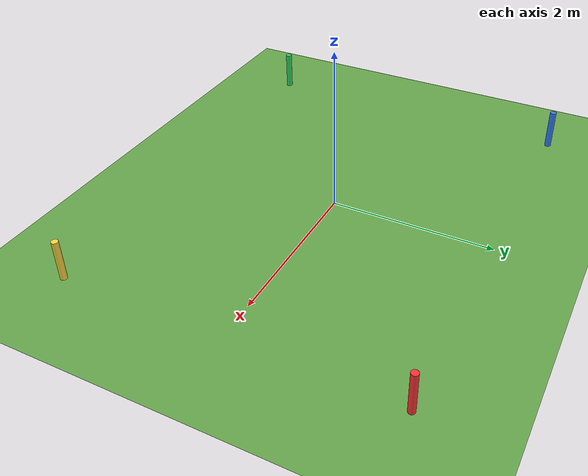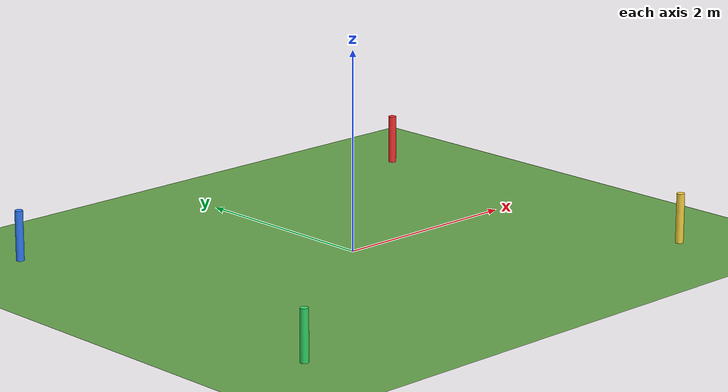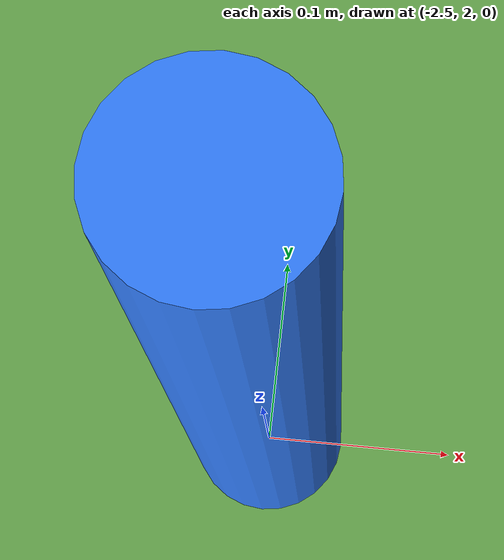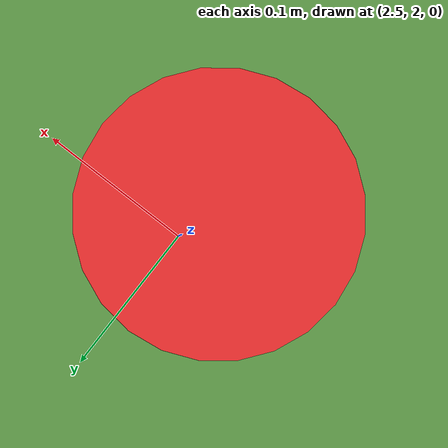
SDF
<?xml version="1.0" ?>
<sdf version="1.11">
  <world name="moon_arena">

    <!-- Fysikk: Dartsim — ros2_control diff_drive + JointVelocityCmd er langt mer stabilt her enn
         med bullet-featherstone (kjente issues med hjulrotasjon / kontakt vs hastighetsmotor). -->
    <physics name="1ms" type="dartsim">
      <max_step_size>0.001</max_step_size>
      <real_time_factor>1.0</real_time_factor>
      <real_time_update_rate>1000</real_time_update_rate>
    </physics>

    <!-- Gazebo Sim 8 system-plugins -->
    <plugin filename="gz-sim-physics-system"
            name="gz::sim::systems::Physics"/>
    <plugin filename="gz-sim-user-commands-system"
            name="gz::sim::systems::UserCommands"/>
    <plugin filename="gz-sim-scene-broadcaster-system"
            name="gz::sim::systems::SceneBroadcaster"/>
    <plugin filename="gz-sim-contact-system"
            name="gz::sim::systems::Contact"/>
    <plugin filename="gz-sim-sensors-system"
            name="gz::sim::systems::Sensors">
      <render_engine>ogre2</render_engine>
    </plugin>
    <plugin filename="gz-sim-imu-system"
            name="gz::sim::systems::Imu"/>

    <!-- Jord-gravitasjon. -->
    <gravity>0 0 -9.81</gravity>

    <!-- Lys, dagslys-scene. -->
    <scene>
      <ambient>0.45 0.45 0.50 1</ambient>
      <background>0.55 0.75 0.95 1</background>
      <shadows>true</shadows>
      <grid>false</grid>
      <sky/>
    </scene>

    <!-- Sol: skarp direksjonal kilde med varm, sterk dagslyskarakter. -->
    <light type="directional" name="sun">
      <cast_shadows>true</cast_shadows>
      <pose>0 0 10 0 0 0</pose>
      <diffuse>1.0 0.97 0.92 1</diffuse>
      <specular>0.5 0.5 0.5 1</specular>
      <attenuation>
        <range>100</range>
        <linear>0.0</linear>
        <constant>0.9</constant>
        <quadratic>0.0</quadratic>
      </attenuation>
      <direction>-0.4 0.3 -1.0</direction>
    </light>

    <!-- Svak himmel-fill saa skyggesiden ikke er helt moerk. -->
    <light type="directional" name="sky_fill">
      <cast_shadows>false</cast_shadows>
      <pose>0 0 10 0 0 0</pose>
      <diffuse>0.35 0.40 0.45 1</diffuse>
      <specular>0.0 0.0 0.0 1</specular>
      <direction>0.5 -0.3 -1.0</direction>
    </light>

    <!-- ================================================================
         BAKKE - stor ytre plate, gress/jord-farge
         ================================================================ -->
    <model name="ground_plane">
      <static>true</static>
      <link name="link">
        <collision name="collision">
          <geometry>
            <plane><normal>0 0 1</normal><size>20 20</size></plane>
          </geometry>
          <surface>
            <friction>
              <!-- Vanlig jordfriksjon (lavere enn regolith). -->
              <ode><mu>1.15</mu><mu2>1.15</mu2></ode>
            </friction>
          </surface>
        </collision>
        <visual name="visual">
          <geometry>
            <plane><normal>0 0 1</normal><size>20 20</size></plane>
          </geometry>
          <material>
            <ambient>0.25 0.40 0.20 1</ambient>
            <diffuse>0.40 0.65 0.30 1</diffuse>
            <specular>0.05 0.05 0.05 1</specular>
          </material>
        </visual>
      </link>
    </model>

    <model name="corner_post_ne">
      <static>true</static>
      <pose>2.5 2.0 0.25 0 0 0</pose>
      <link name="link">
        <visual name="v">
          <geometry><cylinder><radius>0.04</radius><length>0.5</length></cylinder></geometry>
          <material>
            <ambient>0.8 0.15 0.15 1</ambient>
            <diffuse>1.0 0.20 0.20 1</diffuse>
          </material>
        </visual>
      </link>
    </model>
    <model name="corner_post_nw">
      <static>true</static>
      <pose>-2.5 2.0 0.25 0 0 0</pose>
      <link name="link">
        <visual name="v">
          <geometry><cylinder><radius>0.04</radius><length>0.5</length></cylinder></geometry>
          <material>
            <ambient>0.15 0.40 0.85 1</ambient>
            <diffuse>0.20 0.50 1.00 1</diffuse>
          </material>
        </visual>
      </link>
    </model>
    <model name="corner_post_se">
      <static>true</static>
      <pose>2.5 -2.0 0.25 0 0 0</pose>
      <link name="link">
        <visual name="v">
          <geometry><cylinder><radius>0.04</radius><length>0.5</length></cylinder></geometry>
          <material>
            <ambient>0.85 0.70 0.15 1</ambient>
            <diffuse>1.00 0.85 0.25 1</diffuse>
          </material>
        </visual>
      </link>
    </model>
    <model name="corner_post_sw">
      <static>true</static>
      <pose>-2.5 -2.0 0.25 0 0 0</pose>
      <link name="link">
        <visual name="v">
          <geometry><cylinder><radius>0.04</radius><length>0.5</length></cylinder></geometry>
          <material>
            <ambient>0.15 0.65 0.30 1</ambient>
            <diffuse>0.20 0.85 0.40 1</diffuse>
          </material>
        </visual>
      </link>
    </model>

  </world>
</sdf>
